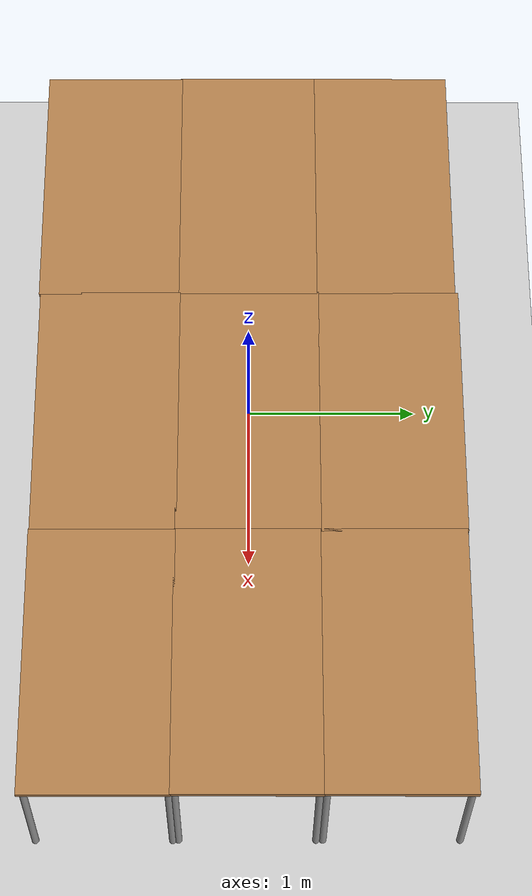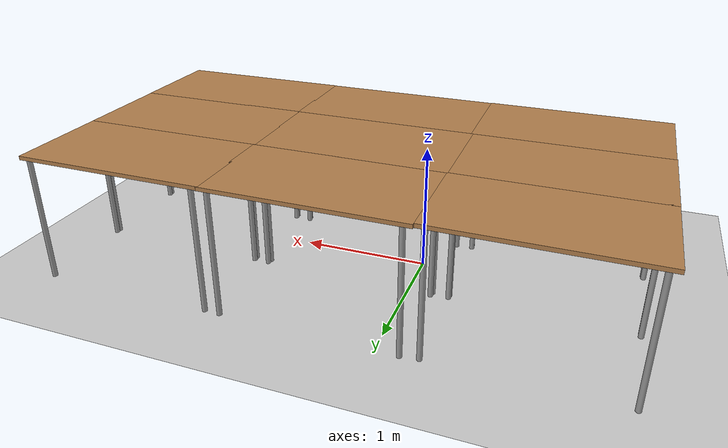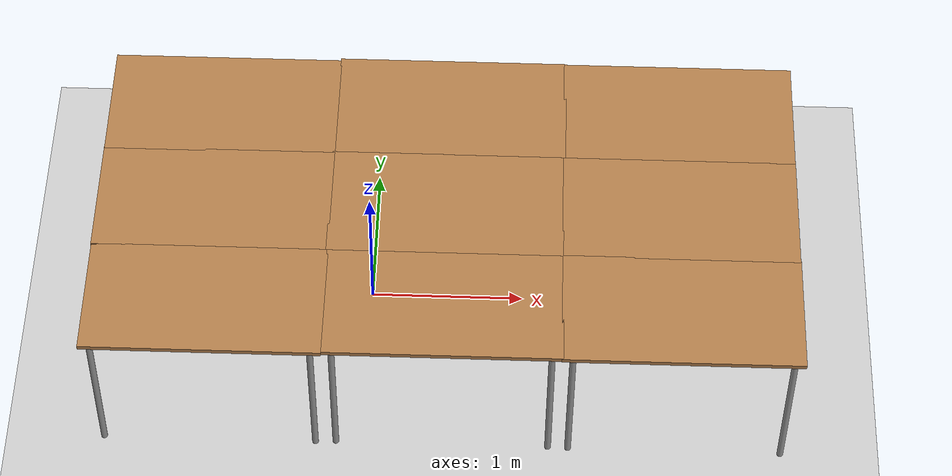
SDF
<sdf version="1.4">
 <world name="default">
  <light name="sun" type="directional">
   <pose>0 0 10 0 -0 0</pose>
   <diffuse>0.8 0.8 0.8 1</diffuse>
   <specular>0.2 0.2 0.2 1</specular>
   <attenuation>
    <range>1000</range>
    <constant>0.9</constant>
    <linear>0.01</linear>
    <quadratic>0.001</quadratic>
   </attenuation>
   <direction>-0.5 0.1 -0.9</direction>
  </light>
  <model name="ground_plane">
   <static>1</static>
   <link name="link">
    <collision name="collision">
     <geometry><plane><normal>0 0 1</normal><size>100 100</size></plane></geometry>
     <surface><friction><ode><mu>100</mu><mu2>50</mu2></ode></friction></surface>
    </collision>
    <visual name="visual">
     <cast_shadows>0</cast_shadows>
     <geometry><plane><normal>0 0 1</normal><size>100 100</size></plane></geometry>
     <material>
      <script><uri>file://media/materials/scripts/gazebo.material</uri><name>Gazebo/Grey</name></script>
     </material>
    </visual>
    <velocity_decay><linear>0</linear><angular>0</angular></velocity_decay>
   </link>
  </model>
  <physics type="ode">
   <max_step_size>0.01</max_step_size>
   <real_time_factor>1</real_time_factor>
   <real_time_update_rate>100</real_time_update_rate>
   <gravity>0 0 -9.8</gravity>
  </physics>
  <scene><ambient>0.4 0.4 0.4 1</ambient><background>0.7 0.7 0.7 1</background><shadows>1</shadows></scene>
  <model name="table">
   <static>1</static>
   <link name="link">
    <collision name="surface">
     <pose>0 0 1 0 -0 0</pose>
     <geometry><box><size>1.5 0.8 0.03</size></box></geometry>
    </collision>
    <visual name="visual1">
     <pose>0 0 1 0 -0 0</pose>
     <geometry><box><size>1.5 0.8 0.03</size></box></geometry>
     <material>
      <script><uri>file://media/materials/scripts/gazebo.material</uri><name>Gazebo/Wood</name></script>
     </material>
    </visual>
    <collision name="front_left_leg">
     <pose>0.68 0.38 0.5 0 -0 0</pose>
     <geometry><cylinder><radius>0.02</radius><length>1</length></cylinder></geometry>
    </collision>
    <visual name="front_left_leg">
     <pose>0.68 0.38 0.5 0 -0 0</pose>
     <geometry><cylinder><radius>0.02</radius><length>1</length></cylinder></geometry>
     <material>
      <script><uri>file://media/materials/scripts/gazebo.material</uri><name>Gazebo/Grey</name></script>
     </material>
    </visual>
    <collision name="front_right_leg">
     <pose>0.68 -0.38 0.5 0 -0 0</pose>
     <geometry><cylinder><radius>0.02</radius><length>1</length></cylinder></geometry>
    </collision>
    <visual name="front_right_leg">
     <pose>0.68 -0.38 0.5 0 -0 0</pose>
     <geometry><cylinder><radius>0.02</radius><length>1</length></cylinder></geometry>
     <material>
      <script><uri>file://media/materials/scripts/gazebo.material</uri><name>Gazebo/Grey</name></script>
     </material>
    </visual>
    <collision name="back_right_leg">
     <pose>-0.68 -0.38 0.5 0 -0 0</pose>
     <geometry><cylinder><radius>0.02</radius><length>1</length></cylinder></geometry>
    </collision>
    <visual name="back_right_leg">
     <pose>-0.68 -0.38 0.5 0 -0 0</pose>
     <geometry><cylinder><radius>0.02</radius><length>1</length></cylinder></geometry>
     <material>
      <script><uri>file://media/materials/scripts/gazebo.material</uri><name>Gazebo/Grey</name></script>
     </material>
    </visual>
    <collision name="back_left_leg">
     <pose>-0.68 0.38 0.5 0 -0 0</pose>
     <geometry><cylinder><radius>0.02</radius><length>1</length></cylinder></geometry>
    </collision>
    <visual name="back_left_leg">
     <pose>-0.68 0.38 0.5 0 -0 0</pose>
     <geometry><cylinder><radius>0.02</radius><length>1</length></cylinder></geometry>
     <material>
      <script><uri>file://media/materials/scripts/gazebo.material</uri><name>Gazebo/Grey</name></script>
     </material>
    </visual>
    <velocity_decay><linear>0</linear><angular>0</angular></velocity_decay>
   </link>
   <pose>-0.994173 -0.009126 0 0 -0 0</pose>
  </model>
  <model name="table_0">
   <static>1</static>
   <link name="link">
    <collision name="surface">
     <pose>0 0 1 0 -0 0</pose>
     <geometry><box><size>1.5 0.8 0.03</size></box></geometry>
    </collision>
    <visual name="visual1">
     <pose>0 0 1 0 -0 0</pose>
     <geometry><box><size>1.5 0.8 0.03</size></box></geometry>
     <material>
      <script><uri>file://media/materials/scripts/gazebo.material</uri><name>Gazebo/Wood</name></script>
     </material>
    </visual>
    <collision name="front_left_leg">
     <pose>0.68 0.38 0.5 0 -0 0</pose>
     <geometry><cylinder><radius>0.02</radius><length>1</length></cylinder></geometry>
    </collision>
    <visual name="front_left_leg">
     <pose>0.68 0.38 0.5 0 -0 0</pose>
     <geometry><cylinder><radius>0.02</radius><length>1</length></cylinder></geometry>
     <material>
      <script><uri>file://media/materials/scripts/gazebo.material</uri><name>Gazebo/Grey</name></script>
     </material>
    </visual>
    <collision name="front_right_leg">
     <pose>0.68 -0.38 0.5 0 -0 0</pose>
     <geometry><cylinder><radius>0.02</radius><length>1</length></cylinder></geometry>
    </collision>
    <visual name="front_right_leg">
     <pose>0.68 -0.38 0.5 0 -0 0</pose>
     <geometry><cylinder><radius>0.02</radius><length>1</length></cylinder></geometry>
     <material>
      <script><uri>file://media/materials/scripts/gazebo.material</uri><name>Gazebo/Grey</name></script>
     </material>
    </visual>
    <collision name="back_right_leg">
     <pose>-0.68 -0.38 0.5 0 -0 0</pose>
     <geometry><cylinder><radius>0.02</radius><length>1</length></cylinder></geometry>
    </collision>
    <visual name="back_right_leg">
     <pose>-0.68 -0.38 0.5 0 -0 0</pose>
     <geometry><cylinder><radius>0.02</radius><length>1</length></cylinder></geometry>
     <material>
      <script><uri>file://media/materials/scripts/gazebo.material</uri><name>Gazebo/Grey</name></script>
     </material>
    </visual>
    <collision name="back_left_leg">
     <pose>-0.68 0.38 0.5 0 -0 0</pose>
     <geometry><cylinder><radius>0.02</radius><length>1</length></cylinder></geometry>
    </collision>
    <visual name="back_left_leg">
     <pose>-0.68 0.38 0.5 0 -0 0</pose>
     <geometry><cylinder><radius>0.02</radius><length>1</length></cylinder></geometry>
     <material>
      <script><uri>file://media/materials/scripts/gazebo.material</uri><name>Gazebo/Grey</name></script>
     </material>
    </visual>
    <velocity_decay><linear>0</linear><angular>0</angular></velocity_decay>
   </link>
   <pose>0.493645 -0.001488 0 0 -0 0</pose>
  </model>
  <model name="table_1">
   <static>1</static>
   <link name="link">
    <collision name="surface">
     <pose>0 0 1 0 -0 0</pose>
     <geometry><box><size>1.5 0.8 0.03</size></box></geometry>
    </collision>
    <visual name="visual1">
     <pose>0 0 1 0 -0 0</pose>
     <geometry><box><size>1.5 0.8 0.03</size></box></geometry>
     <material>
      <script><uri>file://media/materials/scripts/gazebo.material</uri><name>Gazebo/Wood</name></script>
     </material>
    </visual>
    <collision name="front_left_leg">
     <pose>0.68 0.38 0.5 0 -0 0</pose>
     <geometry><cylinder><radius>0.02</radius><length>1</length></cylinder></geometry>
    </collision>
    <visual name="front_left_leg">
     <pose>0.68 0.38 0.5 0 -0 0</pose>
     <geometry><cylinder><radius>0.02</radius><length>1</length></cylinder></geometry>
     <material>
      <script><uri>file://media/materials/scripts/gazebo.material</uri><name>Gazebo/Grey</name></script>
     </material>
    </visual>
    <collision name="front_right_leg">
     <pose>0.68 -0.38 0.5 0 -0 0</pose>
     <geometry><cylinder><radius>0.02</radius><length>1</length></cylinder></geometry>
    </collision>
    <visual name="front_right_leg">
     <pose>0.68 -0.38 0.5 0 -0 0</pose>
     <geometry><cylinder><radius>0.02</radius><length>1</length></cylinder></geometry>
     <material>
      <script><uri>file://media/materials/scripts/gazebo.material</uri><name>Gazebo/Grey</name></script>
     </material>
    </visual>
    <collision name="back_right_leg">
     <pose>-0.68 -0.38 0.5 0 -0 0</pose>
     <geometry><cylinder><radius>0.02</radius><length>1</length></cylinder></geometry>
    </collision>
    <visual name="back_right_leg">
     <pose>-0.68 -0.38 0.5 0 -0 0</pose>
     <geometry><cylinder><radius>0.02</radius><length>1</length></cylinder></geometry>
     <material>
      <script><uri>file://media/materials/scripts/gazebo.material</uri><name>Gazebo/Grey</name></script>
     </material>
    </visual>
    <collision name="back_left_leg">
     <pose>-0.68 0.38 0.5 0 -0 0</pose>
     <geometry><cylinder><radius>0.02</radius><length>1</length></cylinder></geometry>
    </collision>
    <visual name="back_left_leg">
     <pose>-0.68 0.38 0.5 0 -0 0</pose>
     <geometry><cylinder><radius>0.02</radius><length>1</length></cylinder></geometry>
     <material>
      <script><uri>file://media/materials/scripts/gazebo.material</uri><name>Gazebo/Grey</name></script>
     </material>
    </visual>
    <velocity_decay><linear>0</linear><angular>0</angular></velocity_decay>
   </link>
   <pose>0.500979 0.796184 0 0 -0 0</pose>
  </model>
  <model name="table_2">
   <static>1</static>
   <link name="link">
    <collision name="surface">
     <pose>0 0 1 0 -0 0</pose>
     <geometry><box><size>1.5 0.8 0.03</size></box></geometry>
    </collision>
    <visual name="visual1">
     <pose>0 0 1 0 -0 0</pose>
     <geometry><box><size>1.5 0.8 0.03</size></box></geometry>
     <material>
      <script><uri>file://media/materials/scripts/gazebo.material</uri><name>Gazebo/Wood</name></script>
     </material>
    </visual>
    <collision name="front_left_leg">
     <pose>0.68 0.38 0.5 0 -0 0</pose>
     <geometry><cylinder><radius>0.02</radius><length>1</length></cylinder></geometry>
    </collision>
    <visual name="front_left_leg">
     <pose>0.68 0.38 0.5 0 -0 0</pose>
     <geometry><cylinder><radius>0.02</radius><length>1</length></cylinder></geometry>
     <material>
      <script><uri>file://media/materials/scripts/gazebo.material</uri><name>Gazebo/Grey</name></script>
     </material>
    </visual>
    <collision name="front_right_leg">
     <pose>0.68 -0.38 0.5 0 -0 0</pose>
     <geometry><cylinder><radius>0.02</radius><length>1</length></cylinder></geometry>
    </collision>
    <visual name="front_right_leg">
     <pose>0.68 -0.38 0.5 0 -0 0</pose>
     <geometry><cylinder><radius>0.02</radius><length>1</length></cylinder></geometry>
     <material>
      <script><uri>file://media/materials/scripts/gazebo.material</uri><name>Gazebo/Grey</name></script>
     </material>
    </visual>
    <collision name="back_right_leg">
     <pose>-0.68 -0.38 0.5 0 -0 0</pose>
     <geometry><cylinder><radius>0.02</radius><length>1</length></cylinder></geometry>
    </collision>
    <visual name="back_right_leg">
     <pose>-0.68 -0.38 0.5 0 -0 0</pose>
     <geometry><cylinder><radius>0.02</radius><length>1</length></cylinder></geometry>
     <material>
      <script><uri>file://media/materials/scripts/gazebo.material</uri><name>Gazebo/Grey</name></script>
     </material>
    </visual>
    <collision name="back_left_leg">
     <pose>-0.68 0.38 0.5 0 -0 0</pose>
     <geometry><cylinder><radius>0.02</radius><length>1</length></cylinder></geometry>
    </collision>
    <visual name="back_left_leg">
     <pose>-0.68 0.38 0.5 0 -0 0</pose>
     <geometry><cylinder><radius>0.02</radius><length>1</length></cylinder></geometry>
     <material>
      <script><uri>file://media/materials/scripts/gazebo.material</uri><name>Gazebo/Grey</name></script>
     </material>
    </visual>
    <velocity_decay><linear>0</linear><angular>0</angular></velocity_decay>
   </link>
   <pose>1.98652 -0.00484 0 0 -0 0</pose>
  </model>
  <model name="table_3">
   <static>1</static>
   <link name="link">
    <collision name="surface">
     <pose>0 0 1 0 -0 0</pose>
     <geometry><box><size>1.5 0.8 0.03</size></box></geometry>
    </collision>
    <visual name="visual1">
     <pose>0 0 1 0 -0 0</pose>
     <geometry><box><size>1.5 0.8 0.03</size></box></geometry>
     <material>
      <script><uri>file://media/materials/scripts/gazebo.material</uri><name>Gazebo/Wood</name></script>
     </material>
    </visual>
    <collision name="front_left_leg">
     <pose>0.68 0.38 0.5 0 -0 0</pose>
     <geometry><cylinder><radius>0.02</radius><length>1</length></cylinder></geometry>
    </collision>
    <visual name="front_left_leg">
     <pose>0.68 0.38 0.5 0 -0 0</pose>
     <geometry><cylinder><radius>0.02</radius><length>1</length></cylinder></geometry>
     <material>
      <script><uri>file://media/materials/scripts/gazebo.material</uri><name>Gazebo/Grey</name></script>
     </material>
    </visual>
    <collision name="front_right_leg">
     <pose>0.68 -0.38 0.5 0 -0 0</pose>
     <geometry><cylinder><radius>0.02</radius><length>1</length></cylinder></geometry>
    </collision>
    <visual name="front_right_leg">
     <pose>0.68 -0.38 0.5 0 -0 0</pose>
     <geometry><cylinder><radius>0.02</radius><length>1</length></cylinder></geometry>
     <material>
      <script><uri>file://media/materials/scripts/gazebo.material</uri><name>Gazebo/Grey</name></script>
     </material>
    </visual>
    <collision name="back_right_leg">
     <pose>-0.68 -0.38 0.5 0 -0 0</pose>
     <geometry><cylinder><radius>0.02</radius><length>1</length></cylinder></geometry>
    </collision>
    <visual name="back_right_leg">
     <pose>-0.68 -0.38 0.5 0 -0 0</pose>
     <geometry><cylinder><radius>0.02</radius><length>1</length></cylinder></geometry>
     <material>
      <script><uri>file://media/materials/scripts/gazebo.material</uri><name>Gazebo/Grey</name></script>
     </material>
    </visual>
    <collision name="back_left_leg">
     <pose>-0.68 0.38 0.5 0 -0 0</pose>
     <geometry><cylinder><radius>0.02</radius><length>1</length></cylinder></geometry>
    </collision>
    <visual name="back_left_leg">
     <pose>-0.68 0.38 0.5 0 -0 0</pose>
     <geometry><cylinder><radius>0.02</radius><length>1</length></cylinder></geometry>
     <material>
      <script><uri>file://media/materials/scripts/gazebo.material</uri><name>Gazebo/Grey</name></script>
     </material>
    </visual>
    <velocity_decay><linear>0</linear><angular>0</angular></velocity_decay>
   </link>
   <pose>0.501146 -0.791909 0 0 -0 0</pose>
  </model>
  <model name="table_4">
   <static>1</static>
   <link name="link">
    <collision name="surface">
     <pose>0 0 1 0 -0 0</pose>
     <geometry><box><size>1.5 0.8 0.03</size></box></geometry>
    </collision>
    <visual name="visual1">
     <pose>0 0 1 0 -0 0</pose>
     <geometry><box><size>1.5 0.8 0.03</size></box></geometry>
     <material>
      <script><uri>file://media/materials/scripts/gazebo.material</uri><name>Gazebo/Wood</name></script>
     </material>
    </visual>
    <collision name="front_left_leg">
     <pose>0.68 0.38 0.5 0 -0 0</pose>
     <geometry><cylinder><radius>0.02</radius><length>1</length></cylinder></geometry>
    </collision>
    <visual name="front_left_leg">
     <pose>0.68 0.38 0.5 0 -0 0</pose>
     <geometry><cylinder><radius>0.02</radius><length>1</length></cylinder></geometry>
     <material>
      <script><uri>file://media/materials/scripts/gazebo.material</uri><name>Gazebo/Grey</name></script>
     </material>
    </visual>
    <collision name="front_right_leg">
     <pose>0.68 -0.38 0.5 0 -0 0</pose>
     <geometry><cylinder><radius>0.02</radius><length>1</length></cylinder></geometry>
    </collision>
    <visual name="front_right_leg">
     <pose>0.68 -0.38 0.5 0 -0 0</pose>
     <geometry><cylinder><radius>0.02</radius><length>1</length></cylinder></geometry>
     <material>
      <script><uri>file://media/materials/scripts/gazebo.material</uri><name>Gazebo/Grey</name></script>
     </material>
    </visual>
    <collision name="back_right_leg">
     <pose>-0.68 -0.38 0.5 0 -0 0</pose>
     <geometry><cylinder><radius>0.02</radius><length>1</length></cylinder></geometry>
    </collision>
    <visual name="back_right_leg">
     <pose>-0.68 -0.38 0.5 0 -0 0</pose>
     <geometry><cylinder><radius>0.02</radius><length>1</length></cylinder></geometry>
     <material>
      <script><uri>file://media/materials/scripts/gazebo.material</uri><name>Gazebo/Grey</name></script>
     </material>
    </visual>
    <collision name="back_left_leg">
     <pose>-0.68 0.38 0.5 0 -0 0</pose>
     <geometry><cylinder><radius>0.02</radius><length>1</length></cylinder></geometry>
    </collision>
    <visual name="back_left_leg">
     <pose>-0.68 0.38 0.5 0 -0 0</pose>
     <geometry><cylinder><radius>0.02</radius><length>1</length></cylinder></geometry>
     <material>
      <script><uri>file://media/materials/scripts/gazebo.material</uri><name>Gazebo/Grey</name></script>
     </material>
    </visual>
    <velocity_decay><linear>0</linear><angular>0</angular></velocity_decay>
   </link>
   <pose>1.98928 -0.796422 0 0 -0 0</pose>
  </model>
  <spherical_coordinates>
   <surface_model>EARTH_WGS84</surface_model>
   <latitude_deg>0</latitude_deg>
   <longitude_deg>0</longitude_deg>
   <elevation>0</elevation>
   <heading_deg>0</heading_deg>
  </spherical_coordinates>
  <model name="table_5">
   <static>1</static>
   <link name="link">
    <collision name="surface">
     <pose>0 0 1 0 -0 0</pose>
     <geometry><box><size>1.5 0.8 0.03</size></box></geometry>
     <surface><friction><ode><mu>0.6</mu><mu2>0.6</mu2></ode></friction></surface>
    </collision>
    <visual name="visual1">
     <pose>0 0 1 0 -0 0</pose>
     <geometry><box><size>1.5 0.8 0.03</size></box></geometry>
     <material>
      <script><uri>file://media/materials/scripts/gazebo.material</uri><name>Gazebo/Wood</name></script>
     </material>
    </visual>
    <collision name="front_left_leg">
     <pose>0.68 0.38 0.5 0 -0 0</pose>
     <geometry><cylinder><radius>0.02</radius><length>1</length></cylinder></geometry>
    </collision>
    <visual name="front_left_leg">
     <pose>0.68 0.38 0.5 0 -0 0</pose>
     <geometry><cylinder><radius>0.02</radius><length>1</length></cylinder></geometry>
     <material>
      <script><uri>file://media/materials/scripts/gazebo.material</uri><name>Gazebo/Grey</name></script>
     </material>
    </visual>
    <collision name="front_right_leg">
     <pose>0.68 -0.38 0.5 0 -0 0</pose>
     <geometry><cylinder><radius>0.02</radius><length>1</length></cylinder></geometry>
    </collision>
    <visual name="front_right_leg">
     <pose>0.68 -0.38 0.5 0 -0 0</pose>
     <geometry><cylinder><radius>0.02</radius><length>1</length></cylinder></geometry>
     <material>
      <script><uri>file://media/materials/scripts/gazebo.material</uri><name>Gazebo/Grey</name></script>
     </material>
    </visual>
    <collision name="back_right_leg">
     <pose>-0.68 -0.38 0.5 0 -0 0</pose>
     <geometry><cylinder><radius>0.02</radius><length>1</length></cylinder></geometry>
    </collision>
    <visual name="back_right_leg">
     <pose>-0.68 -0.38 0.5 0 -0 0</pose>
     <geometry><cylinder><radius>0.02</radius><length>1</length></cylinder></geometry>
     <material>
      <script><uri>file://media/materials/scripts/gazebo.material</uri><name>Gazebo/Grey</name></script>
     </material>
    </visual>
    <collision name="back_left_leg">
     <pose>-0.68 0.38 0.5 0 -0 0</pose>
     <geometry><cylinder><radius>0.02</radius><length>1</length></cylinder></geometry>
    </collision>
    <visual name="back_left_leg">
     <pose>-0.68 0.38 0.5 0 -0 0</pose>
     <geometry><cylinder><radius>0.02</radius><length>1</length></cylinder></geometry>
     <material>
      <script><uri>file://media/materials/scripts/gazebo.material</uri><name>Gazebo/Grey</name></script>
     </material>
    </visual>
    <velocity_decay><linear>0</linear><angular>0</angular></velocity_decay>
   </link>
   <pose>-0.989894 -0.799759 0 0 -0 0</pose>
  </model>
  <model name="table_6">
   <static>1</static>
   <link name="link">
    <collision name="surface">
     <pose>0 0 1 0 -0 0</pose>
     <geometry><box><size>1.5 0.8 0.03</size></box></geometry>
     <surface><friction><ode><mu>0.6</mu><mu2>0.6</mu2></ode></friction></surface>
    </collision>
    <visual name="visual1">
     <pose>0 0 1 0 -0 0</pose>
     <geometry><box><size>1.5 0.8 0.03</size></box></geometry>
     <material>
      <script><uri>file://media/materials/scripts/gazebo.material</uri><name>Gazebo/Wood</name></script>
     </material>
    </visual>
    <collision name="front_left_leg">
     <pose>0.68 0.38 0.5 0 -0 0</pose>
     <geometry><cylinder><radius>0.02</radius><length>1</length></cylinder></geometry>
    </collision>
    <visual name="front_left_leg">
     <pose>0.68 0.38 0.5 0 -0 0</pose>
     <geometry><cylinder><radius>0.02</radius><length>1</length></cylinder></geometry>
     <material>
      <script><uri>file://media/materials/scripts/gazebo.material</uri><name>Gazebo/Grey</name></script>
     </material>
    </visual>
    <collision name="front_right_leg">
     <pose>0.68 -0.38 0.5 0 -0 0</pose>
     <geometry><cylinder><radius>0.02</radius><length>1</length></cylinder></geometry>
    </collision>
    <visual name="front_right_leg">
     <pose>0.68 -0.38 0.5 0 -0 0</pose>
     <geometry><cylinder><radius>0.02</radius><length>1</length></cylinder></geometry>
     <material>
      <script><uri>file://media/materials/scripts/gazebo.material</uri><name>Gazebo/Grey</name></script>
     </material>
    </visual>
    <collision name="back_right_leg">
     <pose>-0.68 -0.38 0.5 0 -0 0</pose>
     <geometry><cylinder><radius>0.02</radius><length>1</length></cylinder></geometry>
    </collision>
    <visual name="back_right_leg">
     <pose>-0.68 -0.38 0.5 0 -0 0</pose>
     <geometry><cylinder><radius>0.02</radius><length>1</length></cylinder></geometry>
     <material>
      <script><uri>file://media/materials/scripts/gazebo.material</uri><name>Gazebo/Grey</name></script>
     </material>
    </visual>
    <collision name="back_left_leg">
     <pose>-0.68 0.38 0.5 0 -0 0</pose>
     <geometry><cylinder><radius>0.02</radius><length>1</length></cylinder></geometry>
    </collision>
    <visual name="back_left_leg">
     <pose>-0.68 0.38 0.5 0 -0 0</pose>
     <geometry><cylinder><radius>0.02</radius><length>1</length></cylinder></geometry>
     <material>
      <script><uri>file://media/materials/scripts/gazebo.material</uri><name>Gazebo/Grey</name></script>
     </material>
    </visual>
    <velocity_decay><linear>0</linear><angular>0</angular></velocity_decay>
   </link>
   <pose>-0.99319 0.779861 0 0 -0 0</pose>
  </model>
  <model name="table_7">
   <static>1</static>
   <link name="link">
    <collision name="surface">
     <pose>0 0 1 0 -0 0</pose>
     <geometry><box><size>1.5 0.8 0.03</size></box></geometry>
     <surface><friction><ode><mu>0.6</mu><mu2>0.6</mu2></ode></friction></surface>
    </collision>
    <visual name="visual1">
     <pose>0 0 1 0 -0 0</pose>
     <geometry><box><size>1.5 0.8 0.03</size></box></geometry>
     <material>
      <script><uri>file://media/materials/scripts/gazebo.material</uri><name>Gazebo/Wood</name></script>
     </material>
    </visual>
    <collision name="front_left_leg">
     <pose>0.68 0.38 0.5 0 -0 0</pose>
     <geometry><cylinder><radius>0.02</radius><length>1</length></cylinder></geometry>
    </collision>
    <visual name="front_left_leg">
     <pose>0.68 0.38 0.5 0 -0 0</pose>
     <geometry><cylinder><radius>0.02</radius><length>1</length></cylinder></geometry>
     <material>
      <script><uri>file://media/materials/scripts/gazebo.material</uri><name>Gazebo/Grey</name></script>
     </material>
    </visual>
    <collision name="front_right_leg">
     <pose>0.68 -0.38 0.5 0 -0 0</pose>
     <geometry><cylinder><radius>0.02</radius><length>1</length></cylinder></geometry>
    </collision>
    <visual name="front_right_leg">
     <pose>0.68 -0.38 0.5 0 -0 0</pose>
     <geometry><cylinder><radius>0.02</radius><length>1</length></cylinder></geometry>
     <material>
      <script><uri>file://media/materials/scripts/gazebo.material</uri><name>Gazebo/Grey</name></script>
     </material>
    </visual>
    <collision name="back_right_leg">
     <pose>-0.68 -0.38 0.5 0 -0 0</pose>
     <geometry><cylinder><radius>0.02</radius><length>1</length></cylinder></geometry>
    </collision>
    <visual name="back_right_leg">
     <pose>-0.68 -0.38 0.5 0 -0 0</pose>
     <geometry><cylinder><radius>0.02</radius><length>1</length></cylinder></geometry>
     <material>
      <script><uri>file://media/materials/scripts/gazebo.material</uri><name>Gazebo/Grey</name></script>
     </material>
    </visual>
    <collision name="back_left_leg">
     <pose>-0.68 0.38 0.5 0 -0 0</pose>
     <geometry><cylinder><radius>0.02</radius><length>1</length></cylinder></geometry>
    </collision>
    <visual name="back_left_leg">
     <pose>-0.68 0.38 0.5 0 -0 0</pose>
     <geometry><cylinder><radius>0.02</radius><length>1</length></cylinder></geometry>
     <material>
      <script><uri>file://media/materials/scripts/gazebo.material</uri><name>Gazebo/Grey</name></script>
     </material>
    </visual>
    <velocity_decay><linear>0</linear><angular>0</angular></velocity_decay>
   </link>
   <pose>1.98571 0.791968 0 0 -0 0</pose>
  </model>
 </world>
</sdf>
